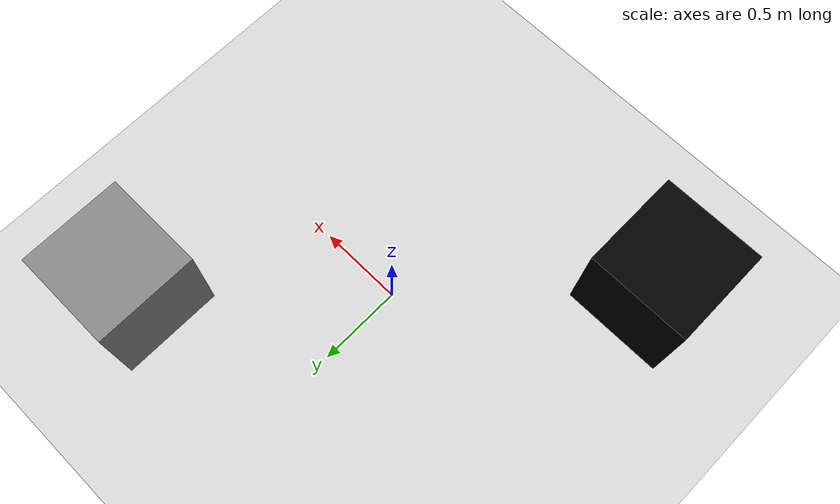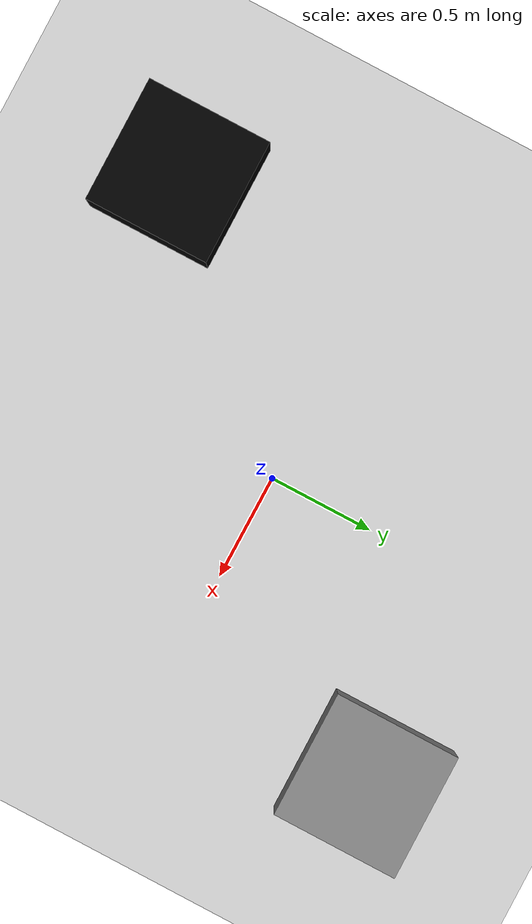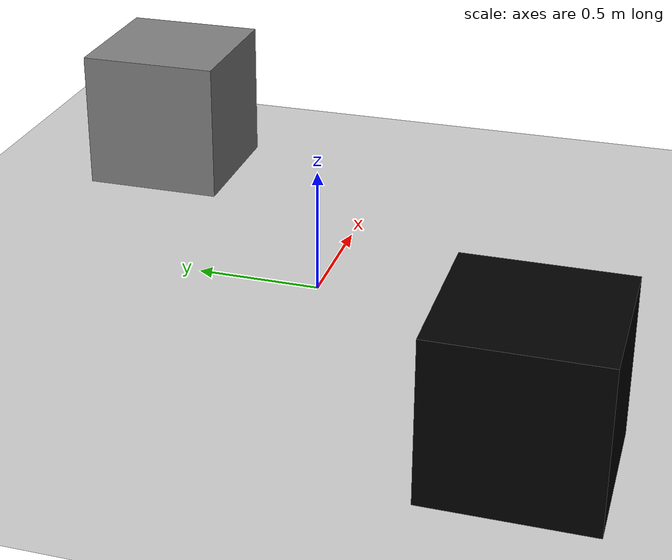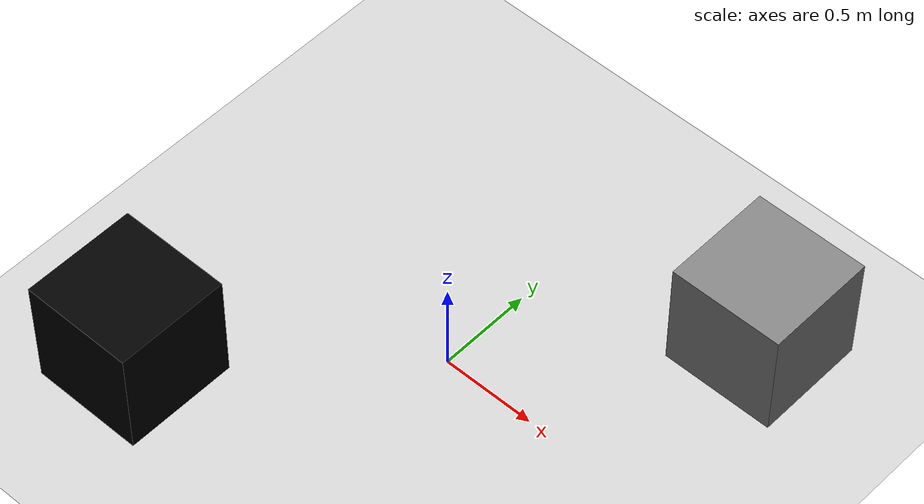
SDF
<?xml version="1.0" ?>
<sdf version="1.6">
    <world name="empty_world">
        <!-- Sun -->
        <include>
            <pose>0 0 0 0 0 0</pose>
            <uri>https://fuel.gazebosim.org/1.0/OpenRobotics/models/Sun</uri>
        </include>

        <!-- Ground plane -->
        <include>
            <pose>0 0 0 0 0 0</pose>
            <uri>https://fuel.gazebosim.org/1.0/OpenRobotics/models/Ground%20Plane</uri>
        </include>

        <!-- Black box -->
        <model name="black_box">
            <!-- Replaced random command with fixed pose -->
            <pose>-1.0 -1.0 0.3 0 0 0</pose>
            <static>true</static>
            <link name="link">
                <!-- ...existing code... -->
                <collision name="collision">
                    <geometry>
                        <box>
                            <size>0.6 0.6 0.6</size>
                        </box>
                    </geometry>
                </collision>
                <visual name="visual">
                    <geometry>
                        <box>
                            <size>0.6 0.6 0.6</size>
                        </box>
                    </geometry>
                    <material>
                        <ambient>0 0 0 1</ambient>
                        <diffuse>0 0 0 1</diffuse>
                    </material>
                </visual>
            </link>
        </model>

        <!-- Gray box -->
        <model name="gray_box">
            <!-- Replaced random command with fixed pose -->
            <pose>1.0 1.0 0.3 0 0 0</pose>
            <static>true</static>
            <link name="link">
                <!-- ...existing code... -->
                <collision name="collision">
                    <geometry>
                        <box>
                            <size>0.6 0.6 0.6</size>
                        </box>
                    </geometry>
                </collision>
                <visual name="visual">
                    <geometry>
                        <box>
                            <size>0.6 0.6 0.6</size>
                        </box>
                    </geometry>
                    <material>
                        <ambient>0.5 0.5 0.5 1</ambient>
                        <diffuse>0.5 0.5 0.5 1</diffuse>
                    </material>
                </visual>
            </link>
        </model>
    </world>
</sdf>
